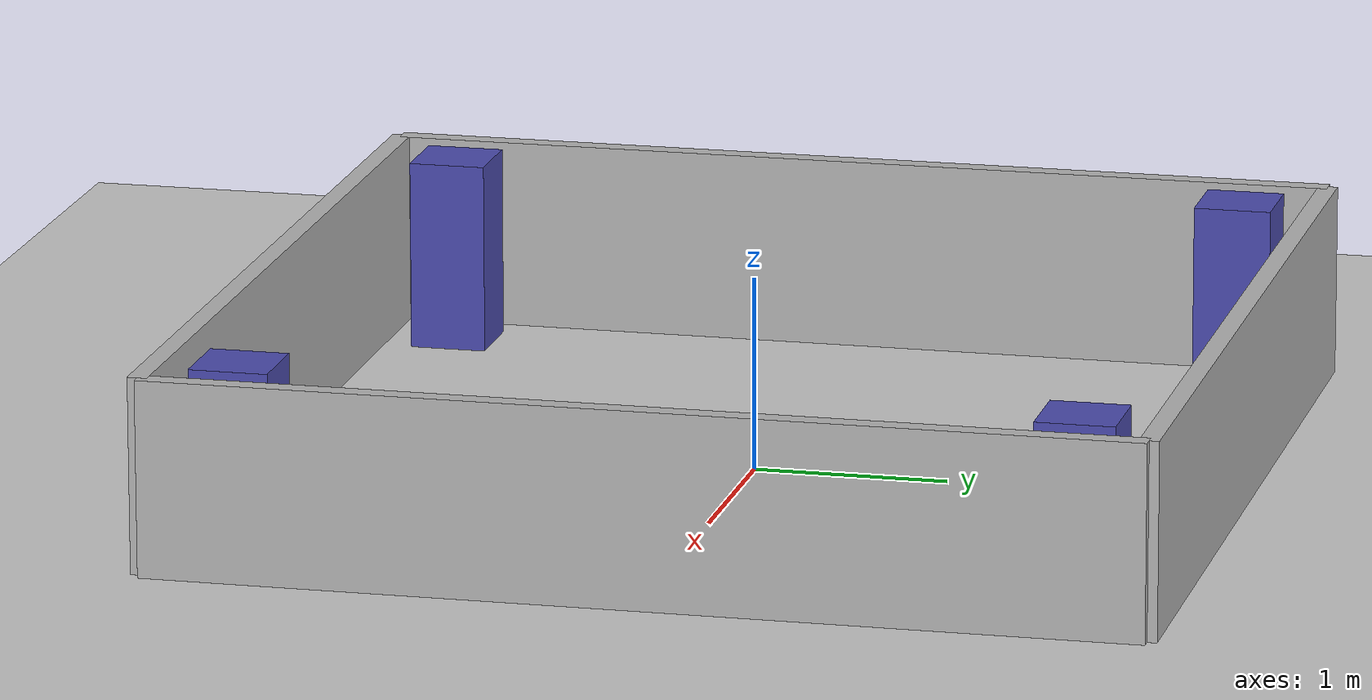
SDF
<?xml version="1.0" ?>
<sdf version="1.8">
  <world name="simple_test_world_v2">
    <physics name="default_physics" type="tpe">
      <max_step_size>0.001</max_step_size>
      <real_time_update_rate>1000</real_time_update_rate>
      <real_time_factor>1.0</real_time_factor>
    </physics>

    <light name="sun_main" type="directional">
      <cast_shadows>false</cast_shadows>
      <pose>0 0 10 0 0 0</pose>
      <diffuse>1 1 1 1</diffuse>
      <specular>0.2 0.2 0.2 1</specular>
      <direction>-0.5 0.1 -1</direction>
    </light>

    <model name="ground_plane">
      <static>true</static>
      <link name="link">
        <collision name="collision">
          <geometry><plane><normal>0 0 1</normal><size>20 20</size></plane></geometry>
        </collision>
        <visual name="visual">
          <geometry><plane><normal>0 0 1</normal><size>20 20</size></plane></geometry>
          <material><ambient>0.8 0.8 0.8 1</ambient><diffuse>0.8 0.8 0.8 1</diffuse></material>
        </visual>
      </link>
    </model>

    <model name="corner_pillar_room">
      <static>true</static>
      <link name="structure">
        <visual name="wall_n"><pose>2.5 0 0.5 0 0 0</pose><geometry><box><size>0.1 5 1</size></box></geometry></visual>
        <visual name="wall_s"><pose>-2.5 0 0.5 0 0 0</pose><geometry><box><size>0.1 5 1</size></box></geometry></visual>
        <visual name="wall_e"><pose>0 2.5 0.5 0 0 0</pose><geometry><box><size>5 0.1 1</size></box></geometry></visual>
        <visual name="wall_w"><pose>0 -2.5 0.5 0 0 0</pose><geometry><box><size>5 0.1 1</size></box></geometry></visual>

        <collision name="wall_n_col"><pose>2.5 0 0.5 0 0 0</pose><geometry><box><size>0.1 5 1</size></box></geometry></collision>
        <collision name="wall_s_col"><pose>-2.5 0 0.5 0 0 0</pose><geometry><box><size>0.1 5 1</size></box></geometry></collision>
        <collision name="wall_e_col"><pose>0 2.5 0.5 0 0 0</pose><geometry><box><size>5 0.1 1</size></box></geometry></collision>
        <collision name="wall_w_col"><pose>0 -2.5 0.5 0 0 0</pose><geometry><box><size>5 0.1 1</size></box></geometry></collision>

        <visual name="p_ne"><pose>2.1 2.1 0.5 0 0 0</pose><geometry><box><size>0.4 0.4 1</size></box></geometry><material><diffuse>0.3 0.3 0.7 1</diffuse></material></visual>
        <collision name="p_ne_col"><pose>2.1 2.1 0.5 0 0 0</pose><geometry><box><size>0.4 0.4 1</size></box></geometry></collision>

        <visual name="p_nw"><pose>2.1 -2.1 0.5 0 0 0</pose><geometry><box><size>0.4 0.4 1</size></box></geometry><material><diffuse>0.3 0.3 0.7 1</diffuse></material></visual>
        <collision name="p_nw_col"><pose>2.1 -2.1 0.5 0 0 0</pose><geometry><box><size>0.4 0.4 1</size></box></geometry></collision>

        <visual name="p_se"><pose>-2.1 2.1 0.5 0 0 0</pose><geometry><box><size>0.4 0.4 1</size></box></geometry><material><diffuse>0.3 0.3 0.7 1</diffuse></material></visual>
        <collision name="p_se_col"><pose>-2.1 2.1 0.5 0 0 0</pose><geometry><box><size>0.4 0.4 1</size></box></geometry></collision>

        <visual name="p_sw"><pose>-2.1 -2.1 0.5 0 0 0</pose><geometry><box><size>0.4 0.4 1</size></box></geometry><material><diffuse>0.3 0.3 0.7 1</diffuse></material></visual>
        <collision name="p_sw_col"><pose>-2.1 -2.1 0.5 0 0 0</pose><geometry><box><size>0.4 0.4 1</size></box></geometry></collision>
      </link>
    </model>
  </world>
</sdf>
